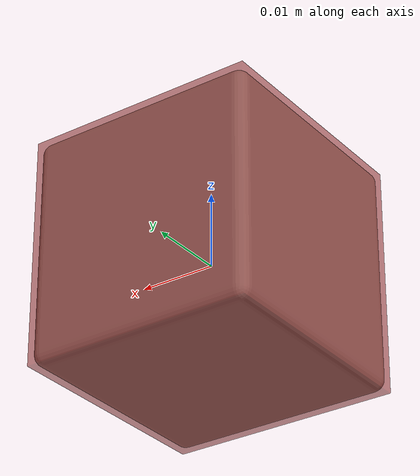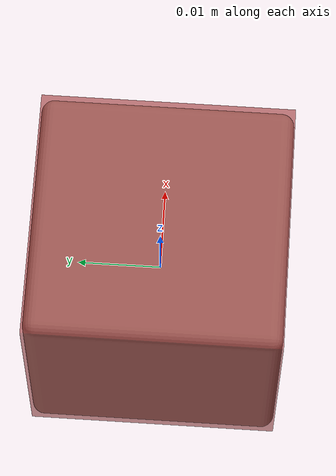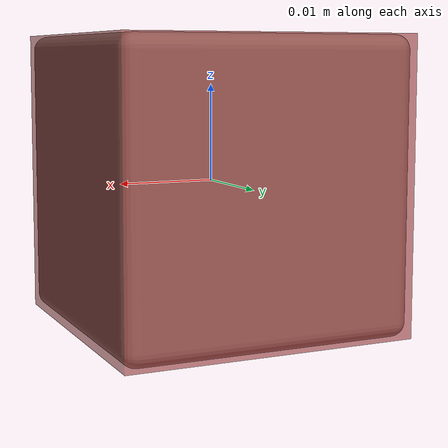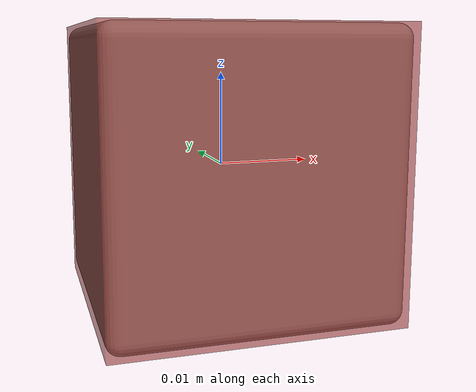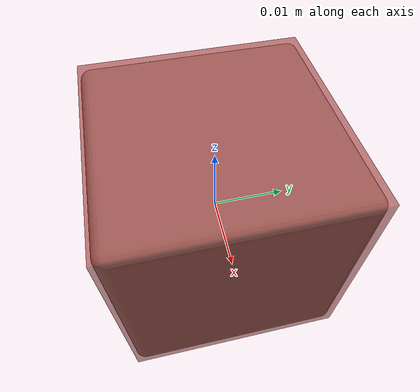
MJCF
<?xml version='1.0' encoding='UTF-8'?>
<mujoco model="model">
  <compiler angle="radian"/>
  <default>
    <default class="visual">
      <geom type="mesh" contype="0" conaffinity="0" group="2" mass="0"/>
    </default>
    <default class="spawn">
      <geom contype="0" conaffinity="0" group="4" rgba="1 1 1 0.5" mass="0"/>
      <site group="4" rgba="1 1 1 0.5"/>
    </default>
    <default class="region">
      <geom contype="0" conaffinity="0" group="1" rgba="0 1 0 0" mass="0"/>
    </default>
    <default class="collision">
      <geom group="0" solref="0.004" solimp="0.998 0.998" density="364.725" rgba="0.5 0 0 0.5"/>
    </default>
  </default>
  <asset>
    <texture type="2d" name="BuildingBlock003_material" file="visuals/T_BuildingBlock003_BC001.png"/>
    <material name="BuildingBlock003_material" texture="BuildingBlock003_material" specular="0.333333"/>
    <mesh name="BuildingBlock003_vis" file="visuals/BuildingBlock003.obj"/>
    <mesh name="BuildingBlock003_Collider1_m_collision" file="collision/BuildingBlock003_Collider1_m.obj"/>
  </asset>
  <worldbody>
    <body>
      <body name="object">
        <geom class="visual" friction="0.95 0.3 0.1" solref="0.001" solimp="0.998 0.998" mass="0" material="BuildingBlock003_material" mesh="BuildingBlock003_vis"/>
        <geom name="BuildingBlock003_Collider1_m" class="collision" type="mesh" mesh="BuildingBlock003_Collider1_m_collision"/>
        <geom name="reg_bbox" size="0.015077 0.015077 0.015077" pos="0.0 0.0 0.0"  class="region" type="box" quat="1.0 0.0 0.0 0.0"/></body>
    </body>
  </worldbody>
</mujoco>
